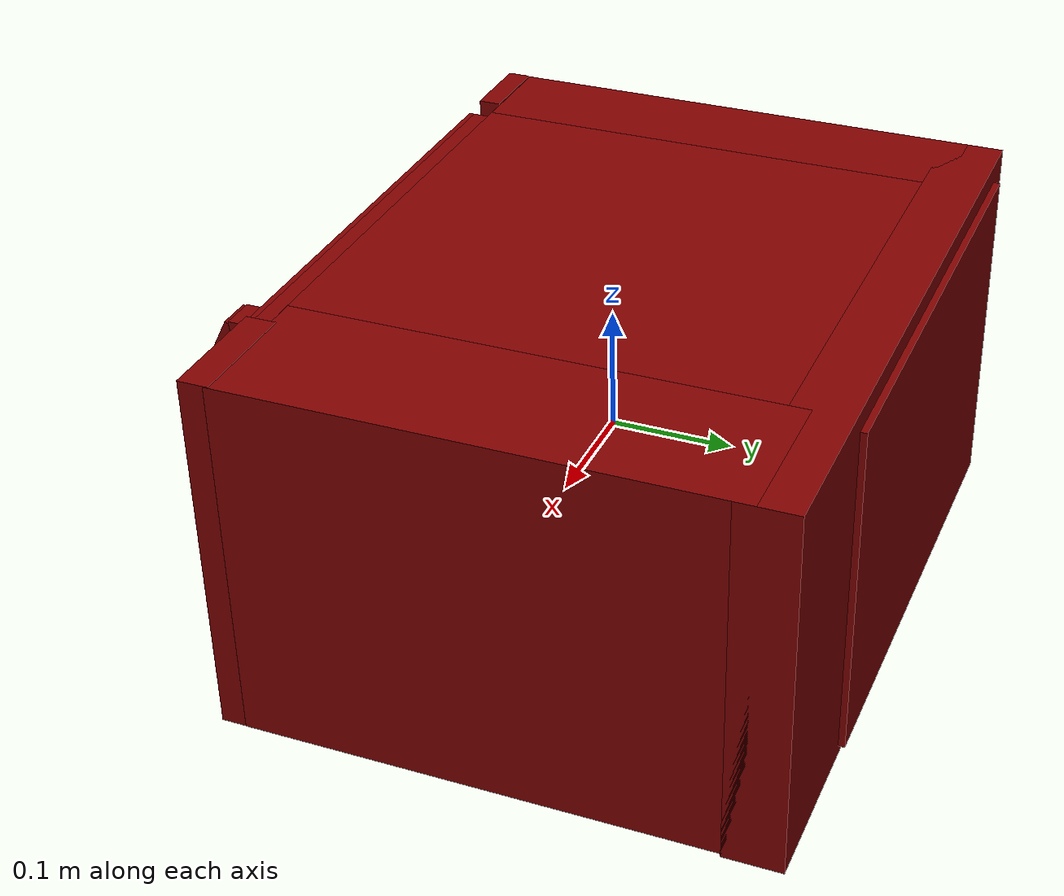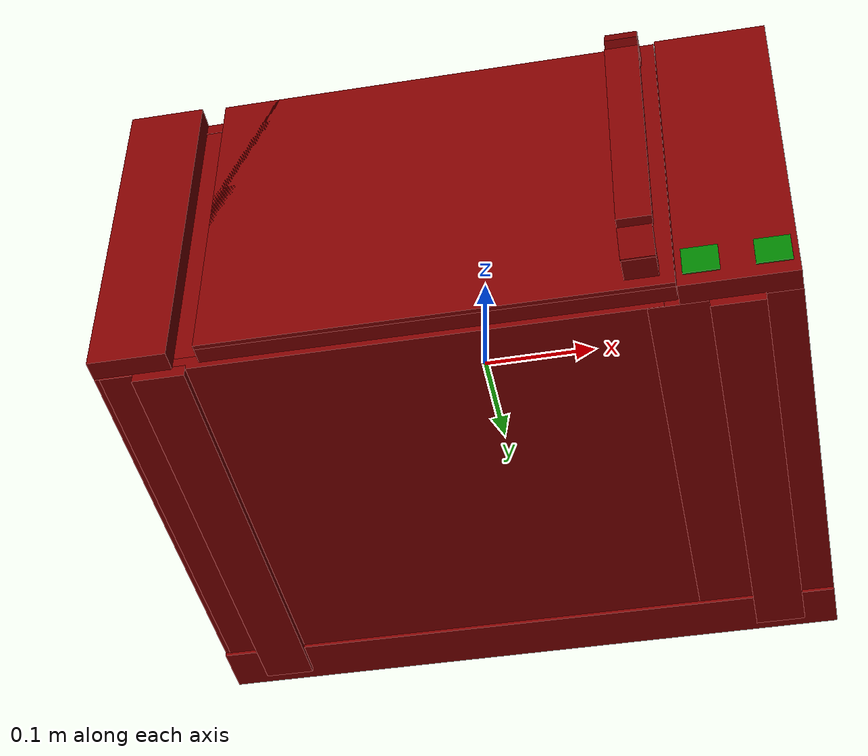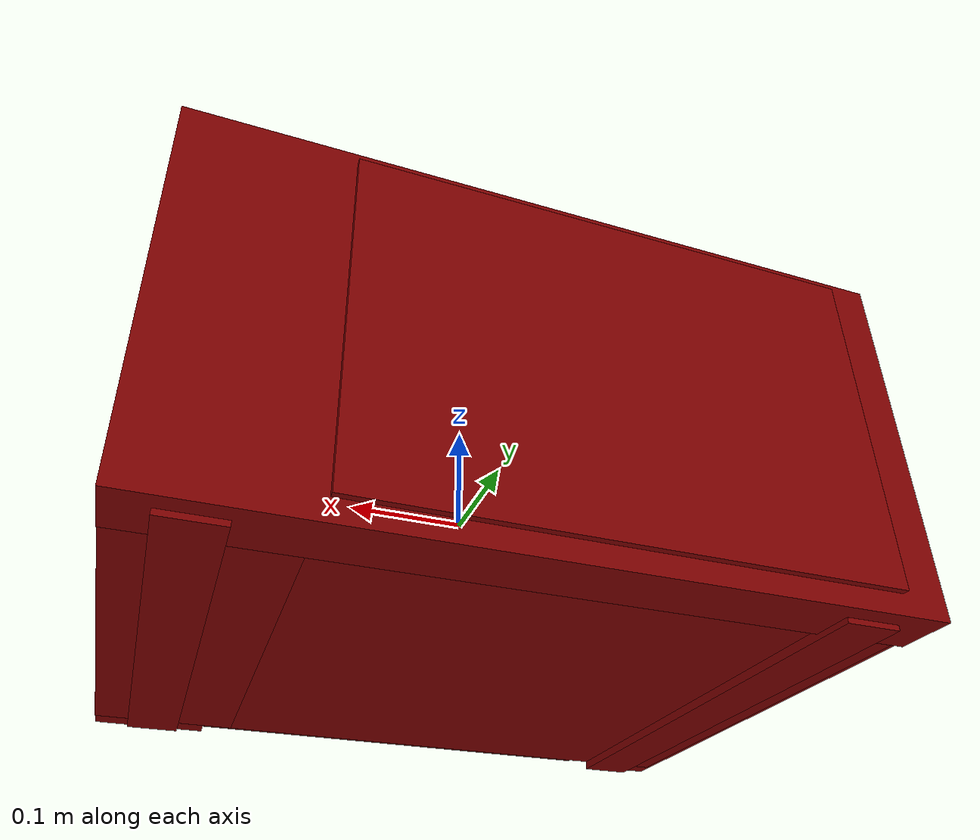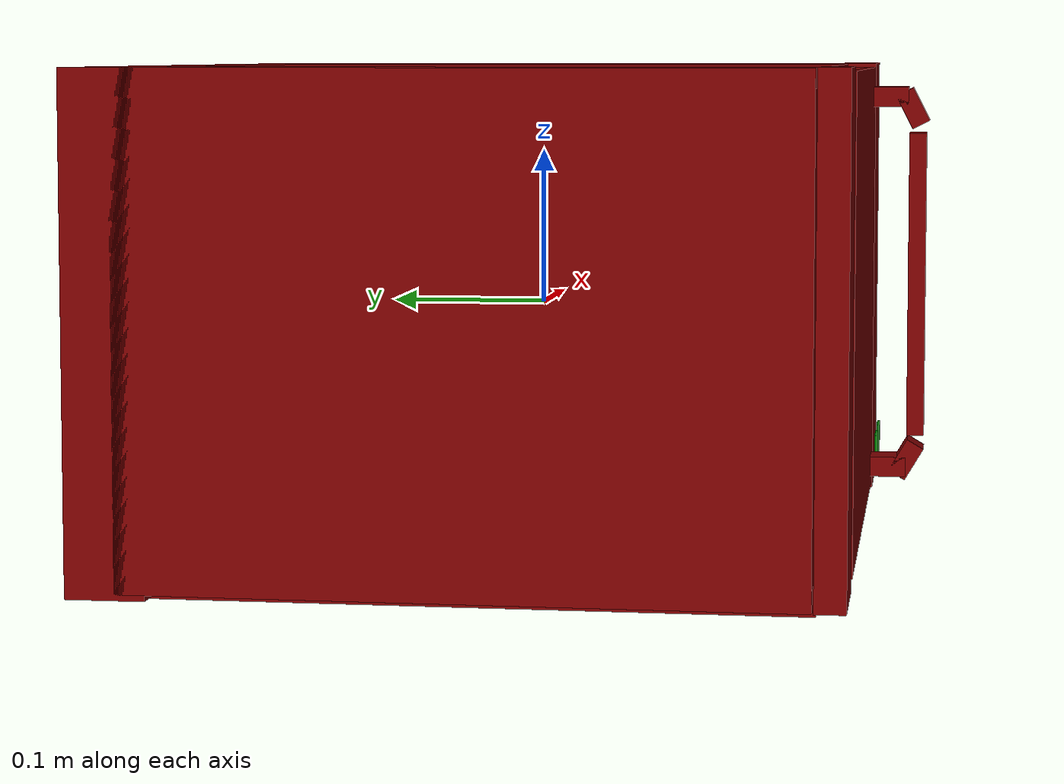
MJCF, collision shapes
<?xml version='1.0' encoding='UTF-8'?>
<mujoco model="model">
  <option timestep="0.002" gravity="0.0 0.0 -9.81"/>
  <compiler angle="radian"/>
  <asset>
    <mesh file="visuals/door.obj" name="door_vis"/>
    <mesh file="visuals/door_Clear.obj" name="door_Clear_vis"/>
    <mesh file="visuals/Body001.obj" name="Body001_vis"/>
    <mesh file="visuals/Disc001.obj" name="Disc001_vis"/>
    <texture file="visuals/T_BC001.png" name="Body001_material" type="2d"/>
    <material name="Body001_material" rgba="1 1 1 1.0" texture="Body001_material" shininess="0.4472135901451111" specular="0.5"/>
    <texture file="visuals/T_BC001.png" name="door_material" type="2d"/>
    <material name="door_material" rgba="1 1 1 1.0" texture="door_material" shininess="0.4472135901451111" specular="0.5"/>
    <material name="door_Clear_material" rgba="0.15626506507396698 0.15626506507396698 0.15626506507396698 0.699999988079071" shininess="0.4472135901451111" specular="0.3103448502657381"/>
    <texture file="visuals/T_BC001.png" name="Disc001_material" type="2d"/>
    <material name="Disc001_material" rgba="1 1 1 1.0" texture="Disc001_material" shininess="0.4472135901451111" specular="0.3103448502657381"/>
  </asset>
  <default>
    <default class="visual">
      <geom conaffinity="0" contype="0" group="1" type="mesh"/>
    </default>
    <default class="collision">
      <geom group="0" rgba="0.5 0 0 0.5"/>
    </default>
    <default class="spawn">
      <geom group="0" rgba="1 1 1 0.5" contype="0" conaffinity="0"/>
      <site group="0" rgba="1 1 1 0.5"/>
    </default>
    <default class="region">
      <geom group="1" conaffinity="0" contype="0" rgba="0 1 0 0"/>
    </default>
  </default>
  <worldbody>
    <body>
      <body name="object">
        <geom class="collision" type="cylinder" pos="-0.00488904 -0.01272559 -0.12117022" size="0.15272502601146698 0.0017746438970789313" quat="1.0 0.0 0.0 0.0" name="tray" rgba="0 1 0 0.5"/>
        <geom class="collision" type="box" pos="0.26505053 -0.21284153 -0.12445283" size="0.014366177842020988 0.000769797305110842 0.01334370207041502" quat="1.0 0.0 0.0 0.0" name="stop_button" rgba="0.0 0.5 0 0.5"/>
        <geom class="collision" type="box" pos="0.20863220 -0.21284153 -0.12470591" size="0.014642727561295033 0.0007697980618104339 0.013612133450806141" quat="1.0 0.0 0.0 0.0" name="start_button" rgba="0.0 0.5 0 0.5"/>
        <geom mesh="Body001_vis" type="mesh" solimp="0.998 0.998 0.001" solref="0.001 1" friction="0.95 0.3 0.1" class="visual" material="Body001_material"/>
        <geom class="collision" type="box" pos="0.00022452 0.21556661 0.00195000" size="0.2843378782272339 0.023882132023572922 0.15333765745162964" quat="1.0 0.0 0.0 0.0"/>
        <geom class="collision" type="box" pos="-0.24260980 0.00965590 0.00372144" size="0.041503578424453735 0.20020213723182678 0.15156620740890503" quat="1.0 0.0 0.0 0.0"/>
        <geom class="collision" type="box" pos="0.22390804 0.00897172 0.00337590" size="0.06065431982278824 0.1993701159954071 0.15191176533699036" quat="1.0 0.0 0.0 0.0"/>
        <geom class="collision" type="box" pos="-0.05128234 0.00906298 0.14960418" size="0.22826983034610748 0.19998085498809814 0.005683446768671274" quat="1.0 0.0 0.0 0.0"/>
        <geom class="collision" type="box" pos="-0.05162154 0.00064078 -0.14206440" size="0.22826983034610748 0.19134223461151123 0.006302667781710625" quat="1.0 0.0 0.0 0.0"/>
        <geom class="collision" type="box" pos="0.23655933 -0.19828415 0.00371492" size="0.04786551743745804 0.012290961109101772 0.152129665017128" quat="1.0 0.0 0.0 0.0"/>
        <geom class="collision" type="box" pos="-0.04321811 0.24391250 0.00400957" size="0.20306691527366638 0.002654001582413912 0.1391487866640091" quat="1.0 0.0 0.0 0.0"/>
        <geom class="collision" type="box" pos="0.23369126 0.01649758 -0.15050511" size="0.021882038563489914 0.20807993412017822 0.005352536216378212" quat="1.0 0.0 0.0 0.0"/>
        <geom class="collision" type="box" pos="-0.22992377 0.01649758 -0.15050511" size="0.021882038563489914 0.20807993412017822 0.005352542735636234" quat="1.0 0.0 0.0 0.0"/>
        <geom class="collision" type="box" pos="-0.25150034 -0.20093538 0.00392083" size="0.03274006396532059 0.009257613681256771 0.15176571905612946" quat="1.0 0.0 0.0 0.0"/>
        <body name="door">
          <joint axis="0.0 0.0 1.0" pos="-0.20478417 -0.20020254 0.00938616" limited="true" name="microjoint" range="-1.5707963267948966 0.0" type="hinge" damping="1" frictionloss="1" armature=".01" stiffness="0.05"/>
          <geom mesh="door_vis" type="mesh" solimp="0.998 0.998 0.001" solref="0.001 1" friction="0.95 0.3 0.1" class="visual" material="door_material"/>
          <geom class="collision" type="box" pos="-0.00457589 -0.20070133 0.00471165" size="0.19244207441806793 0.009490731172263622 0.14833500981330872" quat="1.0 0.0 0.0 0.0"/>
          <geom class="collision" type="box" pos="-0.00446908 -0.19849996 0.00441974" size="0.1926005482673645 0.005018194671720266 0.1278620958328247" quat="1.0 0.0 0.0 0.0"/>
          <geom class="collision" type="box" pos="0.16236411 -0.24132748 0.00146638" size="0.014240493066608906 0.005890222266316414 0.10606895387172699" quat="1.0 0.0 0.0 0.0" name="door_handle_main"/>
          <geom class="collision" type="box" pos="0.16241534 -0.23755424 0.12476714" size="0.013812358491122723 0.006593006197363138 0.012758745811879635" quat="0.972201943397522 -0.2341439425945282 0.0 0.0"/>
          <geom class="collision" type="box" pos="0.16241534 -0.22180322 0.13282467" size="0.013812358491122723 0.012901995331048965 0.006874673068523407" quat="1.0 0.0 0.0 0.0"/>
          <geom class="collision" type="box" pos="0.16241534 -0.23527494 -0.12196973" size="0.013812358491122723 0.0065930066630244255 0.012758745811879635" quat="0.2628830671310425 -0.9648277163505554 0.0 0.0"/>
          <geom class="collision" type="box" pos="0.16241534 -0.22180322 -0.12715862" size="0.013812358491122723 0.012901995331048965 0.006874673999845982" quat="1.0 0.0 0.0 0.0"/>
          <geom class="collision" type="box" pos="-0.00457589 -0.20800541 0.00471165" size="0.19244268536567688 0.00218672095797956 0.14833538234233856" quat="1.0 0.0 0.0 0.0" name="door_main"/>
          <body name="door_Clear">
            <geom mesh="door_Clear_vis" type="mesh" solimp="0.998 0.998 0.001" solref="0.001 1" friction="0.95 0.3 0.1" class="visual" material="door_Clear_material"/>
            <geom class="collision" type="box" pos="-0.00446908 -0.19849996 0.00441974" size="0.1926005482673645 0.005018194671720266 0.1278620958328247" quat="1.0 0.0 0.0 0.0"/>
          </body>
        </body>
        <body name="Disc001">
          <joint axis="0.0 0.0 1.0" pos="-0.00632300 -0.01359365 -0.11086820" limited="false" name="Disc001_joint" range="0 360" type="hinge" damping="1" frictionloss="1" armature=".01" stiffness="0.05"/>
          <geom mesh="Disc001_vis" type="mesh" solimp="0.998 0.998 0.001" solref="0.001 1" friction="0.95 0.3 0.1" class="visual" material="Disc001_material"/>
          <geom class="collision" type="cylinder" pos="-0.00589897 -0.01519557 -0.12682248" size="0.14966647326946259 0.00367545522749424" quat="1.0 0.0 0.0 0.0"/>
        </body>
        <geom class="region" name="reg_int" type="box" pos="-0.02034387 0.001866409999999999 0.008076979999999997" size="0.17272071 0.18256681000000002 0.12847255000000002"/>
        <geom class="region" name="reg_main" type="box" pos="0.0 0.017995709999999998 1.5000000000431335e-07" size="0.28556241 0.22957082 0.15685783"/>
      </body>
    </body>
  </worldbody>
  <actuator>
    <motor name="microjoint_actuator" joint="microjoint" gear="10"/>
    <motor name="Disc001_joint_actuator" joint="Disc001_joint" gear="10"/>
  </actuator>
</mujoco>
